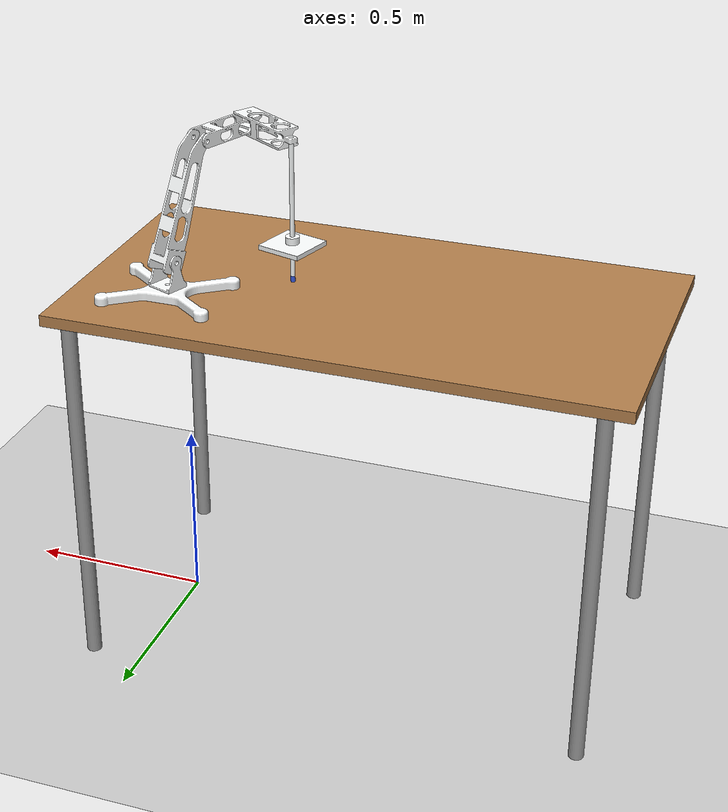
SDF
<sdf version="1.10">
 <world name="empty">
  <physics name="1ms" type="ignored">
   <max_step_size>0.001</max_step_size>
   <real_time_factor>1</real_time_factor>
   <real_time_update_rate>1000</real_time_update_rate>
  </physics>
  <plugin name="gz::sim::systems::Physics" filename="gz-sim-physics-system"/>
  <plugin name="gz::sim::systems::UserCommands" filename="gz-sim-user-commands-system"/>
  <plugin name="gz::sim::systems::SceneBroadcaster" filename="gz-sim-scene-broadcaster-system"/>
  <plugin name="gz::sim::systems::Contact" filename="gz-sim-contact-system"/>
  <gravity>0 0 -9.8000000000000007</gravity>
  <magnetic_field>5.5644999999999998e-06 2.2875799999999999e-05 -4.2388400000000002e-05</magnetic_field>
  <atmosphere type="adiabatic"/>
  <scene>
   <ambient>0.400000006 0.400000006 0.400000006 1</ambient>
   <background>0.699999988 0.699999988 0.699999988 1</background>
   <shadows>true</shadows>
  </scene>
  <model name="ground_plane">
   <static>true</static>
   <link name="link">
    <collision name="collision">
     <geometry><plane><normal>0 0 1</normal><size>100 100</size></plane></geometry>
    </collision>
    <visual name="visual">
     <geometry><plane><normal>0 0 1</normal><size>100 100</size></plane></geometry>
     <material>
      <ambient>0.800000012 0.800000012 0.800000012 1</ambient>
      <diffuse>0.800000012 0.800000012 0.800000012 1</diffuse>
      <specular>0.800000012 0.800000012 0.800000012 1</specular>
     </material>
    </visual>
    <inertial>
     <mass>1</mass>
     <inertia><ixx>1</ixx><ixy>0</ixy><ixz>0</ixz><iyy>1</iyy><iyz>0</iyz><izz>1</izz></inertia>
    </inertial>
   </link>
  </model>
  <model name="Table">
   <static>true</static>
   <link name="link">
    <collision name="surface">
     <pose>0 0 1 0 0 0</pose>
     <geometry><box><size>1.5 0.80000000000000004 0.029999999999999999</size></box></geometry>
     <surface><friction><ode><mu>0.59999999999999998</mu><mu2>0.59999999999999998</mu2></ode></friction></surface>
    </collision>
    <visual name="visual1">
     <pose>0 0 1 0 0 0</pose>
     <geometry><box><size>1.5 0.80000000000000004 0.029999999999999999</size></box></geometry>
     <material>
      <diffuse>1 1 1 1</diffuse>
      <script><uri>file://media/materials/scripts/gazebo.material</uri><name>Gazebo/Wood</name></script>
      <pbr>
       <metal>
        <albedo_map>https://fuel.gazebosim.org/1.0/openrobotics/models/table/4/files/Table_Diffuse.jpg</albedo_map>
       </metal>
      </pbr>
     </material>
    </visual>
    <collision name="front_left_leg">
     <pose>0.68000000000000005 0.38 0.5 0 0 0</pose>
     <geometry><cylinder><radius>0.02</radius><length>1</length></cylinder></geometry>
    </collision>
    <visual name="front_left_leg">
     <pose>0.68000000000000005 0.38 0.5 0 0 0</pose>
     <geometry><cylinder><radius>0.02</radius><length>1</length></cylinder></geometry>
     <material>
      <diffuse>0.5 0.5 0.5 1</diffuse>
      <script><uri>file://media/materials/scripts/gazebo.material</uri><name>Gazebo/Grey</name></script>
     </material>
    </visual>
    <collision name="front_right_leg">
     <pose>0.68000000000000005 -0.38 0.5 0 0 0</pose>
     <geometry><cylinder><radius>0.02</radius><length>1</length></cylinder></geometry>
    </collision>
    <visual name="front_right_leg">
     <pose>0.68000000000000005 -0.38 0.5 0 0 0</pose>
     <geometry><cylinder><radius>0.02</radius><length>1</length></cylinder></geometry>
     <material>
      <diffuse>0.5 0.5 0.5 1</diffuse>
      <script><uri>file://media/materials/scripts/gazebo.material</uri><name>Gazebo/Grey</name></script>
     </material>
    </visual>
    <collision name="back_right_leg">
     <pose>-0.68000000000000005 -0.38 0.5 0 0 0</pose>
     <geometry><cylinder><radius>0.02</radius><length>1</length></cylinder></geometry>
    </collision>
    <visual name="back_right_leg">
     <pose>-0.68000000000000005 -0.38 0.5 0 0 0</pose>
     <geometry><cylinder><radius>0.02</radius><length>1</length></cylinder></geometry>
     <material>
      <diffuse>0.5 0.5 0.5 1</diffuse>
      <script><uri>file://media/materials/scripts/gazebo.material</uri><name>Gazebo/Grey</name></script>
     </material>
    </visual>
    <collision name="back_left_leg">
     <pose>-0.68000000000000005 0.38 0.5 0 0 0</pose>
     <geometry><cylinder><radius>0.02</radius><length>1</length></cylinder></geometry>
    </collision>
    <visual name="back_left_leg">
     <pose>-0.68000000000000005 0.38 0.5 0 0 0</pose>
     <geometry><cylinder><radius>0.02</radius><length>1</length></cylinder></geometry>
     <material>
      <diffuse>0.5 0.5 0.5 1</diffuse>
      <script><uri>file://media/materials/scripts/gazebo.material</uri><name>Gazebo/Grey</name></script>
     </material>
    </visual>
    <inertial>
     <mass>1</mass>
     <inertia><ixx>1</ixx><ixy>0</ixy><ixz>0</ixz><iyy>1</iyy><iyz>0</iyz><izz>1</izz></inertia>
    </inertial>
   </link>
   <pose>-0.53789699999999996 0.0076539599999999996 0 0 0 0</pose>
  </model>
  <model name="laproscope_urdf">
   <link name="base">
    <inertial>
     <pose>3.8332909727662701e-17 -4.29355650579034e-17 0.0049262246615905097 0 0 0</pose>
     <mass>0.59568543153239895</mass>
     <inertia>
      <ixx>0.0023445561034960102</ixx>
      <ixy>4.4720262696295001e-11</ixy>
      <ixz>7.6361851130693794e-20</ixz>
      <iyy>0.00402765803889398</iyy>
      <iyz>-1.50621344482668e-19</iyz>
      <izz>0.0063116601457159404</izz>
     </inertia>
    </inertial>
    <collision name="base_collision">
     <geometry>
      <mesh>
       <scale>1 1 1</scale>
       <uri>file:///home/dhruwik/PROJECTS/my_ros2_ws/src/laproscope_urdf/meshes/base/base.obj</uri>
      </mesh>
     </geometry>
    </collision>
    <visual name="base_visual">
     <geometry>
      <mesh>
       <scale>1 1 1</scale>
       <uri>file:///home/dhruwik/PROJECTS/my_ros2_ws/src/laproscope_urdf/meshes/base/base.obj</uri>
      </mesh>
     </geometry>
     <material><diffuse>0.990196109 1 1 1</diffuse><ambient>0.990196109 1 1 1</ambient></material>
    </visual>
   </link>
   <joint name="joint_1" type="revolute">
    <pose>-1.05879e-22 1.3234899999999999e-23 -3.4694499999999997e-18 4.2351600000000001e-22 1.0161100000000001e-22 2.1516999999999999e-44</pose>
    <parent>base</parent>
    <child>servo_joint</child>
    <axis>
     <xyz>1.0161103501072214e-22 2.4193667238879251e-05 0.99999999970733322</xyz>
     <limit>
      <lower>0</lower>
      <upper>6.2800000000000002</upper>
      <effort>200</effort>
      <velocity>1</velocity>
      <stiffness>100000000</stiffness>
      <dissipation>1</dissipation>
     </limit>
     <dynamics>
      <spring_reference>0</spring_reference>
      <spring_stiffness>0</spring_stiffness>
      <damping>0</damping>
      <friction>0</friction>
     </dynamics>
    </axis>
   </joint>
   <transmission name="joint_1_trans">
    <type>transmission_interface/SimpleTransmission</type>
    <joint name="joint_1"><hardwareInterface>hardware_interface/PositionJointInterface</hardwareInterface></joint>
    <actuator name="motor1">
     <hardwareInterface>hardware_interface/PositionJointInterface</hardwareInterface>
     <mechanicalReduction>1</mechanicalReduction>
    </actuator>
   </transmission>
   <link name="servo_joint">
    <pose>2.0816681711721685e-17 2.7755575615628914e-17 0.023169516147864888 3.9743883114906414e-06 1.3285868212725759e-05 0.58134265306641386</pose>
    <inertial>
     <pose>1.9495939582893e-07 5.4119168017967496e-07 0.020372572953538198 0 0 0</pose>
     <mass>0.066887220871678393</mass>
     <inertia>
      <ixx>9.6002753690309294e-05</ixx>
      <ixy>2.0598996863581199e-05</ixy>
      <ixz>4.9367332757636604e-10</ixz>
      <iyy>8.0586048901692297e-05</iyy>
      <iyz>1.54361301454689e-09</iyz>
      <izz>7.4483223330541301e-05</izz>
     </inertia>
    </inertial>
    <collision name="servo_joint_collision">
     <geometry>
      <mesh>
       <scale>1 1 1</scale>
       <uri>file:///home/dhruwik/PROJECTS/my_ros2_ws/src/laproscope_urdf/meshes/servo_joint/servo_joint.obj</uri>
      </mesh>
     </geometry>
    </collision>
    <visual name="servo_joint_visual">
     <geometry>
      <mesh>
       <scale>1 1 1</scale>
       <uri>file:///home/dhruwik/PROJECTS/my_ros2_ws/src/laproscope_urdf/meshes/servo_joint/servo_joint.obj</uri>
      </mesh>
     </geometry>
     <material><diffuse>0.990196109 1 1 1</diffuse><ambient>0.990196109 1 1 1</ambient></material>
    </visual>
   </link>
   <joint name="joint_2" type="revolute">
    <pose>0 3.4694499999999997e-18 0 0 0 0</pose>
    <parent>servo_joint</parent>
    <child>arm_1</child>
    <axis>
     <xyz>-0.56991128192833329 0.82170623140560639 0</xyz>
     <limit>
      <lower>-1.5700000000000001</lower>
      <upper>1.5700000000000001</upper>
      <effort>100</effort>
      <velocity>0.5</velocity>
      <stiffness>100000000</stiffness>
      <dissipation>1</dissipation>
     </limit>
     <dynamics>
      <spring_reference>0</spring_reference>
      <spring_stiffness>0</spring_stiffness>
      <damping>0</damping>
      <friction>0</friction>
     </dynamics>
    </axis>
   </joint>
   <transmission name="joint_2_trans">
    <type>transmission_interface/SimpleTransmission</type>
    <joint name="joint_2"><hardwareInterface>hardware_interface/PositionJointInterface</hardwareInterface></joint>
    <actuator name="motor2">
     <hardwareInterface>hardware_interface/PositionJointInterface</hardwareInterface>
     <mechanicalReduction>1</mechanicalReduction>
    </actuator>
   </transmission>
   <link name="arm_1">
    <pose>0.034783636161389464 -0.014015779080734786 0.092524339206839334 0.1770571897464259 -0.24867614884778944 0.559154803060532</pose>
    <inertial>
     <pose>-0.027655110309705799 0.026456962364285599 0.11373645090970499 0 0 0</pose>
     <mass>0.22012371026540301</mass>
     <inertia>
      <ixx>0.0026085993985586202</ixx>
      <ixy>1.5227520501260201e-06</ixy>
      <ixz>0.000155386932363509</ixz>
      <iyy>0.00260746601467161</iyy>
      <iyz>0.000107779039864334</iyz>
      <izz>0.000212520040930073</izz>
     </inertia>
    </inertial>
    <collision name="arm_1_collision">
     <geometry>
      <mesh>
       <scale>1 1 1</scale>
       <uri>file:///home/dhruwik/PROJECTS/my_ros2_ws/src/laproscope_urdf/meshes/arm_1/arm_1.obj</uri>
      </mesh>
     </geometry>
    </collision>
    <visual name="arm_1_visual">
     <geometry>
      <mesh>
       <scale>1 1 1</scale>
       <uri>file:///home/dhruwik/PROJECTS/my_ros2_ws/src/laproscope_urdf/meshes/arm_1/arm_1.obj</uri>
      </mesh>
     </geometry>
     <material><diffuse>0.990196109 1 1 1</diffuse><ambient>0.990196109 1 1 1</ambient></material>
    </visual>
   </link>
   <joint name="joint_3" type="revolute">
    <pose>1.3877799999999999e-17 1.3877799999999999e-17 5.5511199999999995e-17 0 1.73472e-18 0</pose>
    <parent>arm_1</parent>
    <child>arm_2</child>
    <axis>
     <xyz>-0.56991128192833396 0.82170623140560595 9.8863847998511757e-19</xyz>
     <limit>
      <lower>-0.78000000000000003</lower>
      <upper>1.5700000000000001</upper>
      <effort>100</effort>
      <velocity>0.5</velocity>
      <stiffness>100000000</stiffness>
      <dissipation>1</dissipation>
     </limit>
     <dynamics>
      <spring_reference>0</spring_reference>
      <spring_stiffness>0</spring_stiffness>
      <damping>0</damping>
      <friction>0</friction>
     </dynamics>
    </axis>
   </joint>
   <transmission name="joint_3_trans">
    <type>transmission_interface/SimpleTransmission</type>
    <joint name="joint_3"><hardwareInterface>hardware_interface/PositionJointInterface</hardwareInterface></joint>
    <actuator name="motor3">
     <hardwareInterface>hardware_interface/PositionJointInterface</hardwareInterface>
     <mechanicalReduction>1</mechanicalReduction>
    </actuator>
   </transmission>
   <link name="arm_2">
    <pose>-0.019287598815369573 -0.13148692386881405 0.37730707738580871 -0.025878995457900553 0.037310247953754032 0.58086004024593263</pose>
    <inertial>
     <pose>-0.096923727735341095 -0.029186519773713299 -0.0040109492904789002 0 0 0</pose>
     <mass>0.090577011373979097</mass>
     <inertia>
      <ixx>0.00018184767683449899</ixx>
      <ixy>-0.00015989463639379299</ixy>
      <ixz>-1.2388295663476301e-05</ixz>
      <iyy>0.00030157732452515098</iyy>
      <iyz>-8.5909713703954802e-06</iyz>
      <izz>0.000449226081148877</izz>
     </inertia>
    </inertial>
    <collision name="arm_2_collision">
     <geometry>
      <mesh>
       <scale>1 1 1</scale>
       <uri>file:///home/dhruwik/PROJECTS/my_ros2_ws/src/laproscope_urdf/meshes/arm_2/arm_2.obj</uri>
      </mesh>
     </geometry>
    </collision>
    <visual name="arm_2_visual">
     <geometry>
      <mesh>
       <scale>1 1 1</scale>
       <uri>file:///home/dhruwik/PROJECTS/my_ros2_ws/src/laproscope_urdf/meshes/arm_2/arm_2.obj</uri>
      </mesh>
     </geometry>
     <material><diffuse>0.990196109 1 1 1</diffuse><ambient>0.990196109 1 1 1</ambient></material>
    </visual>
   </link>
   <joint name="joint_4" type="revolute">
    <pose>0 2.7755599999999997e-17 0 0 0 0</pose>
    <parent>arm_2</parent>
    <child>end</child>
    <axis>
     <xyz>0 0 1</xyz>
     <limit>
      <lower>-1.5700000000000001</lower>
      <upper>1.5700000000000001</upper>
      <effort>100</effort>
      <velocity>0.5</velocity>
      <stiffness>100000000</stiffness>
      <dissipation>1</dissipation>
     </limit>
     <dynamics>
      <spring_reference>0</spring_reference>
      <spring_stiffness>0</spring_stiffness>
      <damping>0</damping>
      <friction>0</friction>
     </dynamics>
    </axis>
   </joint>
   <transmission name="joint_4_trans">
    <type>transmission_interface/SimpleTransmission</type>
    <joint name="joint_4"><hardwareInterface>hardware_interface/PositionJointInterface</hardwareInterface></joint>
    <actuator name="motor4">
     <hardwareInterface>hardware_interface/PositionJointInterface</hardwareInterface>
     <mechanicalReduction>1</mechanicalReduction>
    </actuator>
   </transmission>
   <link name="end">
    <pose>-0.1159989004396737 -0.28787911272994687 0.40263556730046046 0.00026765963944724126 -0.0017908575859979182 -2.1081980769089554</pose>
    <inertial>
     <pose>-0.0039190223836140844 -0.11317391531295951 -0.099526612434872389 0 0 0</pose>
     <mass>0.15236618155134571</mass>
     <inertia>
      <ixx>0.0032292361298572412</ixx>
      <ixy>-2.7592781549647088e-05</ixy>
      <ixz>-2.673660740937059e-05</ixz>
      <iyy>0.0024333041426146929</iyy>
      <iyz>-0.00077282835862320506</iyz>
      <izz>0.0008988112934864372</izz>
     </inertia>
    </inertial>
    <collision name="end_collision">
     <geometry>
      <mesh>
       <scale>1 1 1</scale>
       <uri>file:///home/dhruwik/PROJECTS/my_ros2_ws/src/laproscope_urdf/meshes/end/end.obj</uri>
      </mesh>
     </geometry>
    </collision>
    <collision name="end_fixed_joint_lump__laproscope_collision_1">
     <pose>-0.0062736460030775 -0.18114139191755199 -0.018750000000000301 -0.024854575278951501 0.035816668915109713 0.96395326919236757</pose>
     <geometry>
      <mesh>
       <scale>1 1 1</scale>
       <uri>file:///home/dhruwik/PROJECTS/my_ros2_ws/src/laproscope_urdf/meshes/laproscope/laproscope.obj</uri>
      </mesh>
     </geometry>
    </collision>
    <collision name="end_fixed_joint_lump__camera_link_collision_2">
     <pose>-0.0062736460030774557 -0.18149002270780029 -0.40174239992568539 -0.024854575278951501 0.035816668915109713 0.96395326919236757</pose>
     <geometry><cylinder><length>0.016</length><radius>0.0060000000000000001</radius></cylinder></geometry>
    </collision>
    <visual name="end_visual">
     <geometry>
      <mesh>
       <scale>1 1 1</scale>
       <uri>file:///home/dhruwik/PROJECTS/my_ros2_ws/src/laproscope_urdf/meshes/end/end.obj</uri>
      </mesh>
     </geometry>
     <material><diffuse>0.990196109 1 1 1</diffuse><ambient>0.990196109 1 1 1</ambient></material>
    </visual>
    <visual name="end_fixed_joint_lump__laproscope_visual_1">
     <pose>-0.0062736460030775 -0.18114139191755199 -0.018750000000000301 -0.024854575278951501 0.035816668915109713 0.96395326919236757</pose>
     <geometry>
      <mesh>
       <scale>1 1 1</scale>
       <uri>file:///home/dhruwik/PROJECTS/my_ros2_ws/src/laproscope_urdf/meshes/laproscope/laproscope.obj</uri>
      </mesh>
     </geometry>
     <material><diffuse>0.990196109 1 1 1</diffuse><ambient>0.990196109 1 1 1</ambient></material>
    </visual>
    <visual name="end_fixed_joint_lump__camera_link_visual_2">
     <pose>-0.0062736460030774557 -0.18149002270780029 -0.40174239992568539 -0.024854575278951501 0.035816668915109713 0.96395326919236757</pose>
     <geometry><cylinder><length>0.016</length><radius>0.0060000000000000001</radius></cylinder></geometry>
     <material>
      <diffuse>0.149999991 0.349999994 1 0.850000024</diffuse>
      <ambient>0.149999991 0.349999994 1 0.850000024</ambient>
     </material>
    </visual>
   </link>
   <joint name="joint_6" type="prismatic">
    <pose>5.5511199999999995e-17 5.5511199999999995e-17 -8.2399399999999993e-18 6.9388900000000004e-18 -8.6736199999999993e-18 1.11022e-16</pose>
    <parent>end</parent>
    <child>laproholder</child>
    <axis>
     <xyz>-0.035809011600864298 -0.024836077573764805 0.99904999071063472</xyz>
     <limit>
      <lower>0</lower>
      <upper>0.28000000000000003</upper>
      <effort>100</effort>
      <velocity>5</velocity>
      <stiffness>100000000</stiffness>
      <dissipation>1</dissipation>
     </limit>
     <dynamics>
      <spring_reference>0</spring_reference>
      <spring_stiffness>0</spring_stiffness>
      <damping>0</damping>
      <friction>0</friction>
     </dynamics>
    </axis>
   </joint>
   <transmission name="joint_6_trans">
    <type>transmission_interface/SimpleTransmission</type>
    <joint name="joint_6"><hardwareInterface>hardware_interface/PositionJointInterface</hardwareInterface></joint>
    <actuator name="motor6">
     <hardwareInterface>hardware_interface/PositionJointInterface</hardwareInterface>
     <mechanicalReduction>1</mechanicalReduction>
    </actuator>
   </transmission>
   <link name="laproholder">
    <pose>-0.26863238952236118 -0.19034061129359908 0.057562334734457377 -0.026173827792549398 0.034575483748797542 -1.1442909909883174</pose>
    <inertial>
     <pose>-0.00132848154303245 -0.0009213957376376519 0.037063839907650303 0 0 0</pose>
     <mass>0.22139017339405551</mass>
     <inertia>
      <ixx>0.00026807165565083011</ixx>
      <ixy>2.1818854389215231e-07</ixy>
      <ixz>-8.7767990779233764e-06</ixz>
      <iyy>0.00026790839744868157</iyy>
      <iyz>-6.0873297810714621e-06</iyz>
      <izz>0.00051262450934089676</izz>
     </inertia>
    </inertial>
    <collision name="laproholder_collision">
     <geometry>
      <mesh>
       <scale>1 1 1</scale>
       <uri>file:///home/dhruwik/PROJECTS/my_ros2_ws/src/laproscope_urdf/meshes/laproholder/laproholder.obj</uri>
      </mesh>
     </geometry>
    </collision>
    <collision name="laproholder_fixed_joint_lump__stomach_collision_1">
     <pose>-0.0015336792022728799 -0.0010637148007725499 0.0427887317824018 0 0 0</pose>
     <geometry>
      <mesh>
       <scale>1 1 1</scale>
       <uri>file:///home/dhruwik/PROJECTS/my_ros2_ws/src/laproscope_urdf/meshes/stomach/stomach.obj</uri>
      </mesh>
     </geometry>
    </collision>
    <visual name="laproholder_visual">
     <geometry>
      <mesh>
       <scale>1 1 1</scale>
       <uri>file:///home/dhruwik/PROJECTS/my_ros2_ws/src/laproscope_urdf/meshes/laproholder/laproholder.obj</uri>
      </mesh>
     </geometry>
     <material><diffuse>0.990196109 1 1 1</diffuse><ambient>0.990196109 1 1 1</ambient></material>
    </visual>
    <visual name="laproholder_fixed_joint_lump__stomach_visual_1">
     <pose>-0.0015336792022728799 -0.0010637148007725499 0.0427887317824018 0 0 0</pose>
     <geometry>
      <mesh>
       <scale>1 1 1</scale>
       <uri>file:///home/dhruwik/PROJECTS/my_ros2_ws/src/laproscope_urdf/meshes/stomach/stomach.obj</uri>
      </mesh>
     </geometry>
     <material><diffuse>0.990196109 1 1 1</diffuse><ambient>0.990196109 1 1 1</ambient></material>
    </visual>
   </link>
   <frame name="joint_8" attached_to="laproscope">
    <pose>0.0134283793503241 0.0093135290901618095 -0.37464374651648802 0 0 0</pose>
   </frame>
   <frame name="camera_link" attached_to="joint_8"/>
   <frame name="joint_5" attached_to="end">
    <pose>-0.0062736460030775 -0.18114139191755199 -0.018750000000000301 -0.024854575278951518 0.035816668915109699 0.96395326919236757</pose>
   </frame>
   <frame name="laproscope" attached_to="joint_5"/>
   <frame name="joint_7" attached_to="laproholder">
    <pose>-0.0015336792022728799 -0.0010637148007725499 0.0427887317824018 0 0 0</pose>
   </frame>
   <frame name="stomach" attached_to="joint_7"/>
   <pose>-0.04204879690568452 0.1897879582868322 1.0223786631957292 1.4950866740483072e-05 8.7196252269156502e-05 -0.00032784813486471607</pose>
   <static>false</static>
   <plugin name="gz_ros2_control" filename="libgz_ros2_control-system.so">
    <parameters>$(find laproscope_urdf)/config/ros2_controllers.yaml</parameters>
   </plugin>
  </model>
  <light name="sun" type="directional">
   <pose>0 0 10 0 0 0</pose>
   <intensity>1</intensity>
   <direction>-0.5 0.10000000000000001 -0.90000000000000002</direction>
   <diffuse>0.800000012 0.800000012 0.800000012 1</diffuse>
   <specular>0.200000003 0.200000003 0.200000003 1</specular>
   <attenuation>
    <range>1000</range>
    <linear>0.0099999997764825821</linear>
    <constant>0.89999997615814209</constant>
    <quadratic>0.0010000000474974513</quadratic>
   </attenuation>
   <spot><inner_angle>0</inner_angle><outer_angle>0</outer_angle><falloff>0</falloff></spot>
  </light>
 </world>
</sdf>
